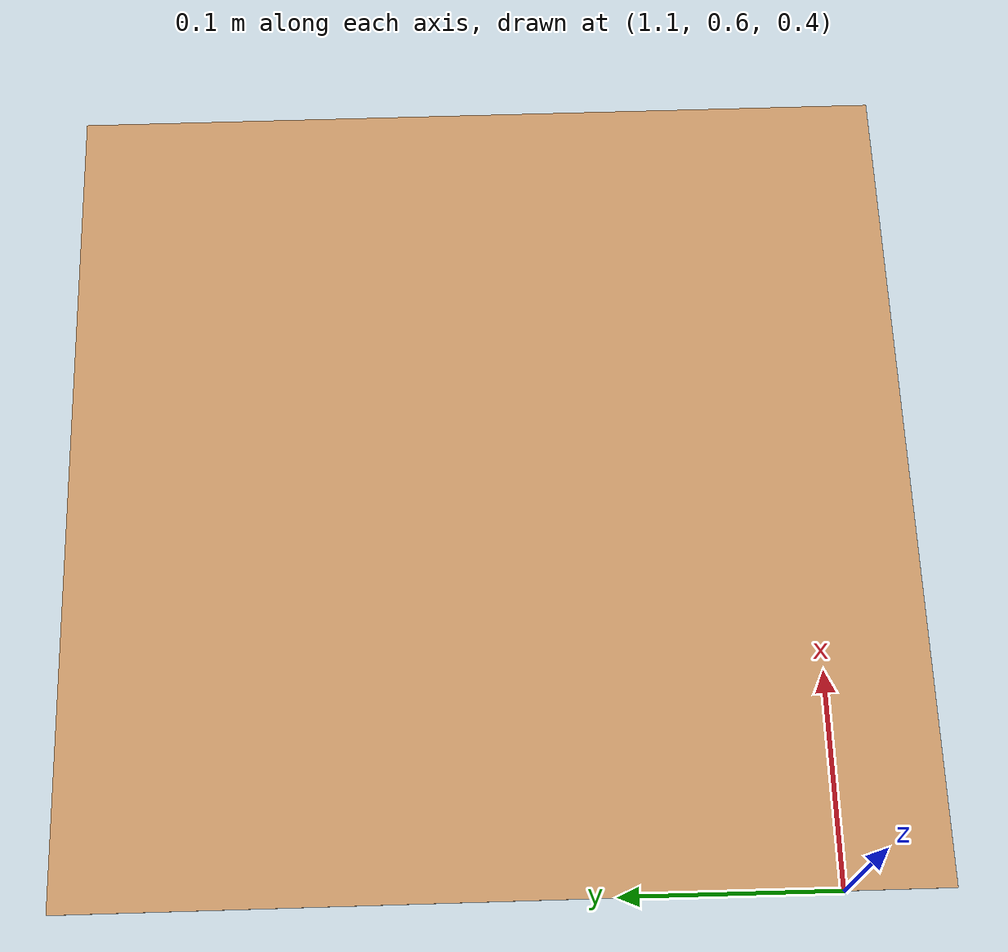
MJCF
<mujoco>
    <asset>
        <texture
            name="chessboard_texture" type="2d" builtin="checker"
            rgb1="0.616 0.341 0.106" rgb2="0.902 0.8 0.671"
            width="300" height="300">
        </texture>
        <material
            name="chessboard_mat" texture="chessboard_texture" texrepeat="4 4"
            texuniform="false">
        </material>
    </asset>
    <worldbody>
        <body pos="1.3 0.75 0.4" name="chessboard">
                <geom
                    name="chessboard" size="0.20 0.20 0.0001" type="box"
                    contype="0" conaffinity="0" material="chessboard_mat">
                </geom>
        </body>
    </worldbody>
</mujoco>
